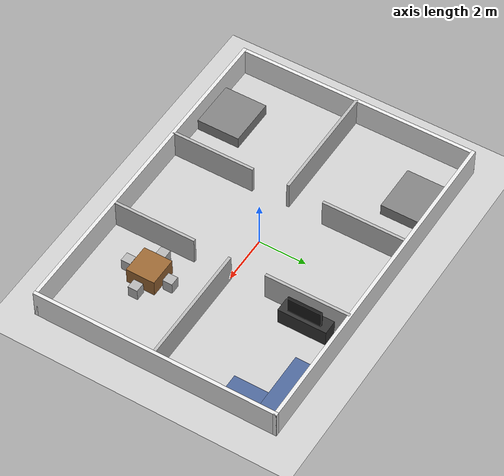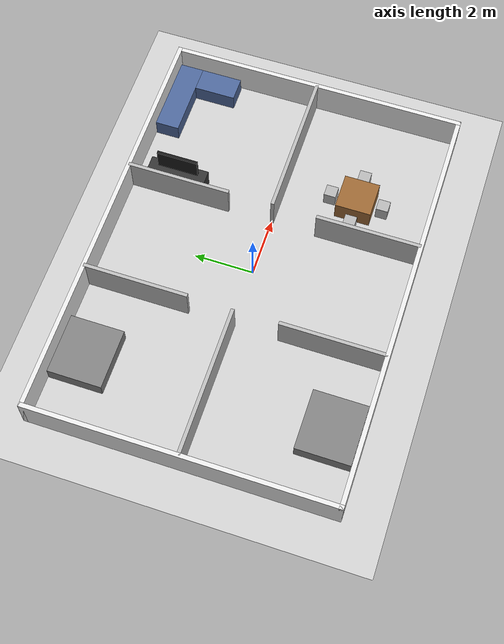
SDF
<?xml version="1.0"?>
<sdf version="1.6">
  <world name="xecuahuy_full_furniture">
    <include><uri>model://ground_plane</uri></include>
    <include><uri>model://sun</uri></include>

    <model name="wall_n"><static>true</static><pose>0 5 0.6 0 0 0</pose>
      <link name="l"><visual name="v"><geometry><box><size>14.15 0.15 1.2</size></box></geometry><material><ambient>0.9 0.9 0.9 1</ambient></material></visual>
      <collision name="c"><geometry><box><size>14.15 0.15 1.2</size></box></geometry></collision></link></model>
    <model name="wall_s"><static>true</static><pose>0 -5 0.6 0 0 0</pose>
      <link name="l"><visual name="v"><geometry><box><size>14.15 0.15 1.2</size></box></geometry><material><ambient>0.9 0.9 0.9 1</ambient></material></visual>
      <collision name="c"><geometry><box><size>14.15 0.15 1.2</size></box></geometry></collision></link></model>
    <model name="wall_e"><static>true</static><pose>7 0 0.6 0 0 0</pose>
      <link name="l"><visual name="v"><geometry><box><size>0.15 10.15 1.2</size></box></geometry><material><ambient>0.9 0.9 0.9 1</ambient></material></visual>
      <collision name="c"><geometry><box><size>0.15 10.15 1.2</size></box></geometry></collision></link></model>
    <model name="wall_w"><static>true</static><pose>-7 0 0.6 0 0 0</pose>
      <link name="l"><visual name="v"><geometry><box><size>0.15 10.15 1.2</size></box></geometry><material><ambient>0.9 0.9 0.9 1</ambient></material></visual>
      <collision name="c"><geometry><box><size>0.15 10.15 1.2</size></box></geometry></collision></link></model>

    <model name="wall_hl_l_top"><static>true</static><pose>-2 3.25 0.6 0 0 0</pose>
      <link name="l"><visual name="v"><geometry><box><size>0.12 3.5 1.2</size></box></geometry></visual><collision name="c"><geometry><box><size>0.12 3.5 1.2</size></box></geometry></collision></link></model>
    <model name="wall_hl_l_bot"><static>true</static><pose>-2 -3.25 0.6 0 0 0</pose>
      <link name="l"><visual name="v"><geometry><box><size>0.12 3.5 1.2</size></box></geometry></visual><collision name="c"><geometry><box><size>0.12 3.5 1.2</size></box></geometry></collision></link></model>

    <model name="wall_hl_r_top"><static>true</static><pose>2 3.25 0.6 0 0 0</pose>
      <link name="l"><visual name="v"><geometry><box><size>0.12 3.5 1.2</size></box></geometry></visual><collision name="c"><geometry><box><size>0.12 3.5 1.2</size></box></geometry></collision></link></model>
    <model name="wall_hl_r_bot"><static>true</static><pose>2 -3.25 0.6 0 0 0</pose>
      <link name="l"><visual name="v"><geometry><box><size>0.12 3.5 1.2</size></box></geometry></visual><collision name="c"><geometry><box><size>0.12 3.5 1.2</size></box></geometry></collision></link></model>
    <!-- Ngăn giữa các phòng -->
    <model name="wall_rooms_l"><static>true</static><pose>-4.5 0 0.6 0 0 0</pose>
      <link name="l"><visual name="v"><geometry><box><size>5.0 0.12 1.2</size></box></geometry></visual><collision name="c"><geometry><box><size>5.0 0.12 1.2</size></box></geometry></collision></link></model>
    <model name="wall_rooms_r"><static>true</static><pose>4.5 0 0.6 0 0 0</pose>
      <link name="l"><visual name="v"><geometry><box><size>5.0 0.12 1.2</size></box></geometry></visual><collision name="c"><geometry><box><size>5.0 0.12 1.2</size></box></geometry></collision></link></model>

    <model name="bed1"><static>true</static><pose>-4.5 4.0 0.25 0 0 0</pose>
      <link name="l"><visual name="v"><geometry><box><size>2.0 1.8 0.5</size></box></geometry><material><ambient>0.5 0.5 0.5 1</ambient></material></visual><collision name="c"><geometry><box><size>2.0 1.8 0.5</size></box></geometry></collision></link></model>

    <model name="bed2"><static>true</static><pose>-4.5 -4.0 0.25 0 0 0</pose>
      <link name="l"><visual name="v"><geometry><box><size>2.0 1.8 0.5</size></box></geometry><material><ambient>0.5 0.5 0.5 1</ambient></material></visual><collision name="c"><geometry><box><size>2.0 1.8 0.5</size></box></geometry></collision></link></model>

    <model name="sofa_long"><static>true</static><pose>5.5 4.5 0.3 0 0 0</pose>
      <link name="l"><visual name="v"><geometry><box><size>2.6 0.8 0.6</size></box></geometry><material><ambient>0.3 0.4 0.6 1</ambient></material></visual><collision name="c"><geometry><box><size>2.6 0.8 0.6</size></box></geometry></collision></link></model>
    <model name="sofa_short"><static>true</static><pose>6.4 3.4 0.3 0 0 0</pose>
      <link name="l"><visual name="v"><geometry><box><size>0.8 1.4 0.6</size></box></geometry><material><ambient>0.3 0.4 0.6 1</ambient></material></visual><collision name="c"><geometry><box><size>0.8 1.4 0.6</size></box></geometry></collision></link></model>

    <model name="tv_stand"><static>true</static><pose>2.5 3.5 0.35 0 0 0</pose>
      <link name="l"><visual name="v"><geometry><box><size>0.6 2.0 0.7</size></box></geometry><material><ambient>0.2 0.2 0.2 1</ambient></material></visual><collision name="c"><geometry><box><size>0.6 2.0 0.7</size></box></geometry></collision></link></model>

    <model name="tv_screen"><static>true</static><pose>2.6 3.5 1.05 0 0 0</pose>
      <link name="l"><visual name="v"><geometry><box><size>0.1 1.4 0.7</size></box></geometry><material><ambient>0.1 0.1 0.1 1</ambient></material></visual><collision name="c"><geometry><box><size>0.1 1.4 0.7</size></box></geometry></collision></link></model>

    <model name="dining_table"><static>true</static><pose>3.5 -2.5 0.35 0 0 0</pose>
      <link name="l"><visual name="v"><geometry><box><size>1.2 1.2 0.7</size></box></geometry><material><ambient>0.6 0.4 0.2 1</ambient></material></visual><collision name="c"><geometry><box><size>1.2 1.2 0.7</size></box></geometry></collision></link></model>
    <model name="chair1"><static>true</static><pose>2.6 -2.5 0.25 0 0 0</pose>
      <link name="l"><visual name="v"><geometry><box><size>0.4 0.4 0.5</size></box></geometry><material><ambient>0.7 0.7 0.7 1</ambient></material></visual><collision name="c"><geometry><box><size>0.4 0.4 0.5</size></box></geometry></collision></link></model>
    <model name="chair2"><static>true</static><pose>4.4 -2.5 0.25 0 0 0</pose>
      <link name="l"><visual name="v"><geometry><box><size>0.4 0.4 0.5</size></box></geometry><material><ambient>0.7 0.7 0.7 1</ambient></material></visual><collision name="c"><geometry><box><size>0.4 0.4 0.5</size></box></geometry></collision></link></model>
    <model name="chair3"><static>true</static><pose>3.5 -1.6 0.25 0 0 0</pose>
      <link name="l"><visual name="v"><geometry><box><size>0.4 0.4 0.5</size></box></geometry><material><ambient>0.7 0.7 0.7 1</ambient></material></visual><collision name="c"><geometry><box><size>0.4 0.4 0.5</size></box></geometry></collision></link></model>
    <model name="chair4"><static>true</static><pose>3.5 -3.4 0.25 0 0 0</pose>
      <link name="l"><visual name="v"><geometry><box><size>0.4 0.4 0.5</size></box></geometry><material><ambient>0.7 0.7 0.7 1</ambient></material></visual><collision name="c"><geometry><box><size>0.4 0.4 0.5</size></box></geometry></collision></link></model>

  </world>
</sdf>
